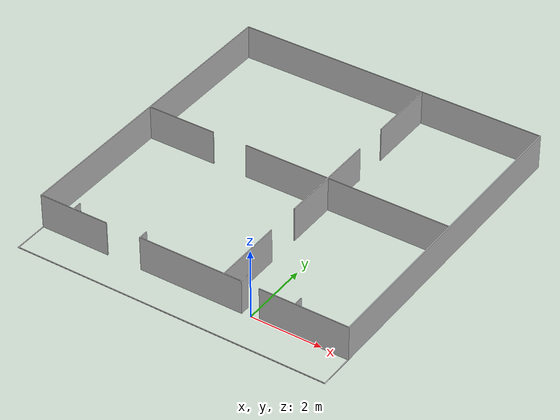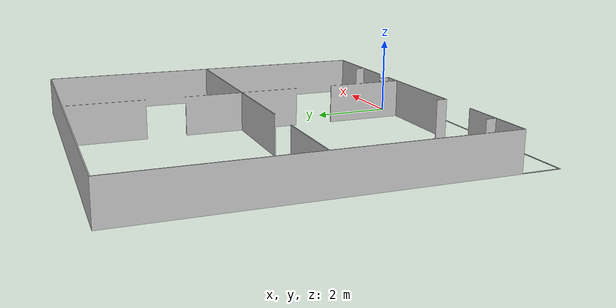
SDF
<?xml version="1.0" ?>
<sdf version="1.6">
  <model name="rwc2023/walls">
    <static>true</static>
    <link name="1_link">
      <collision name="1_col">
        <geometry>
          <mesh>
            <uri>model://rwc2023/walls/heightmap.stl</uri>
          </mesh>
        </geometry>
      </collision>
      <visual name="1_vis">
        <geometry>
          <mesh>
            <uri>model://rwc2023/walls/heightmap.stl</uri>
          </mesh>
        </geometry>
      </visual>
      <pose>0 0 0 0 0 0</pose>
    </link>
  </model>
</sdf>
